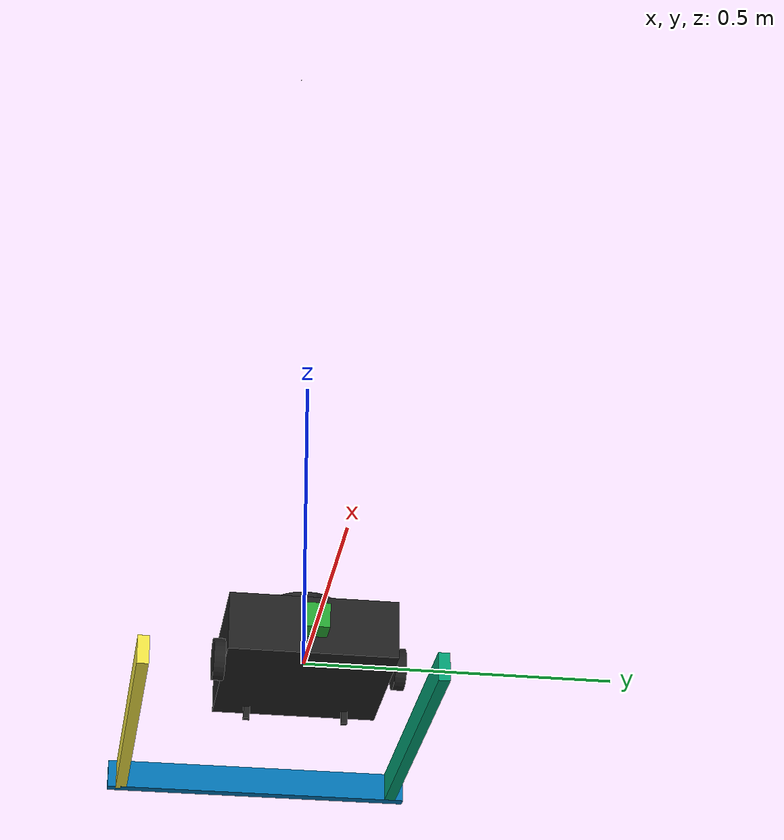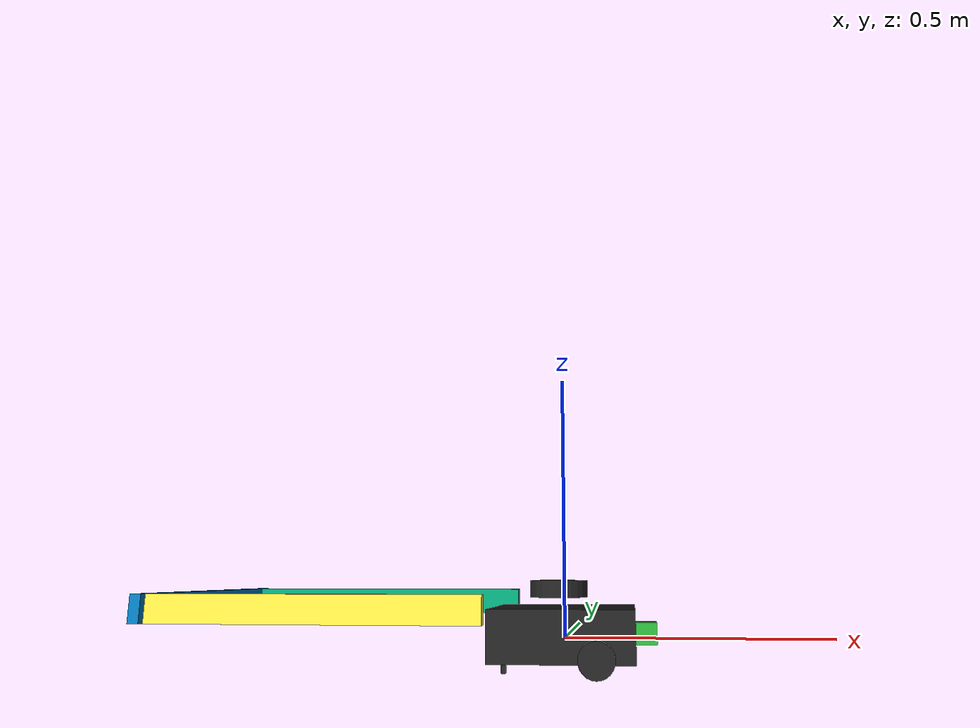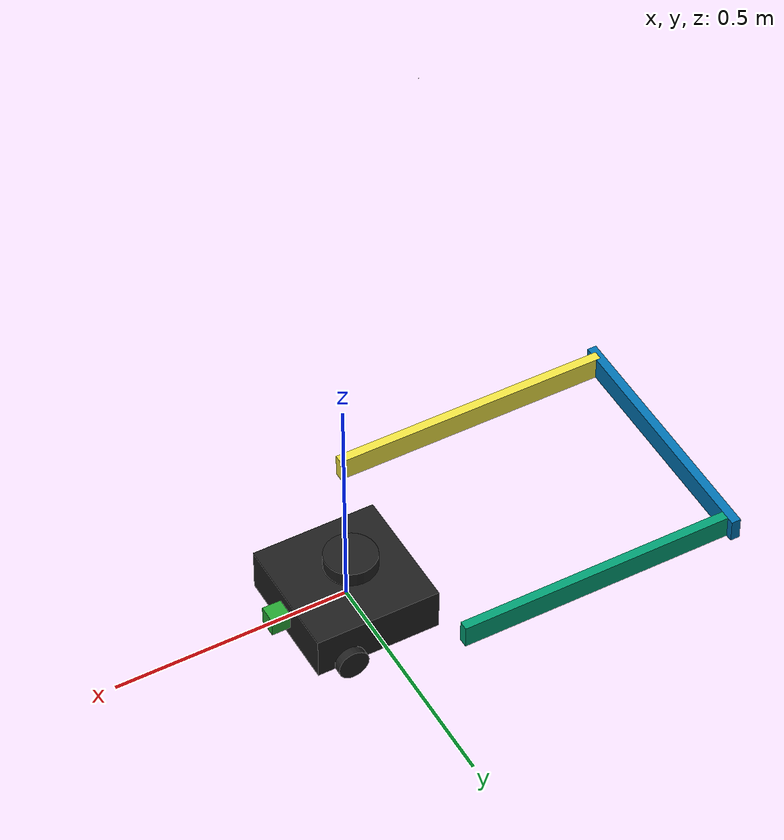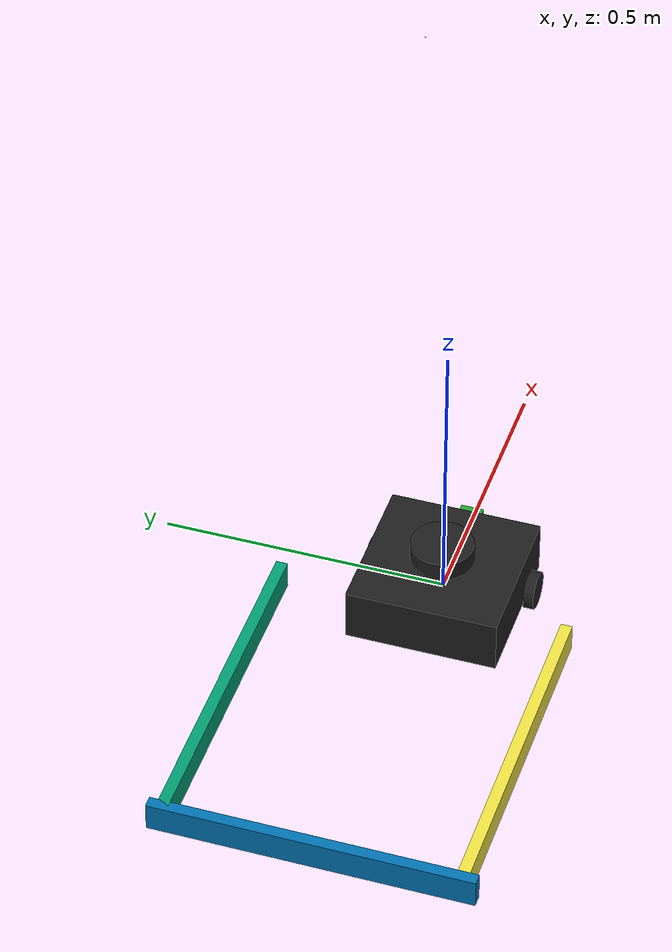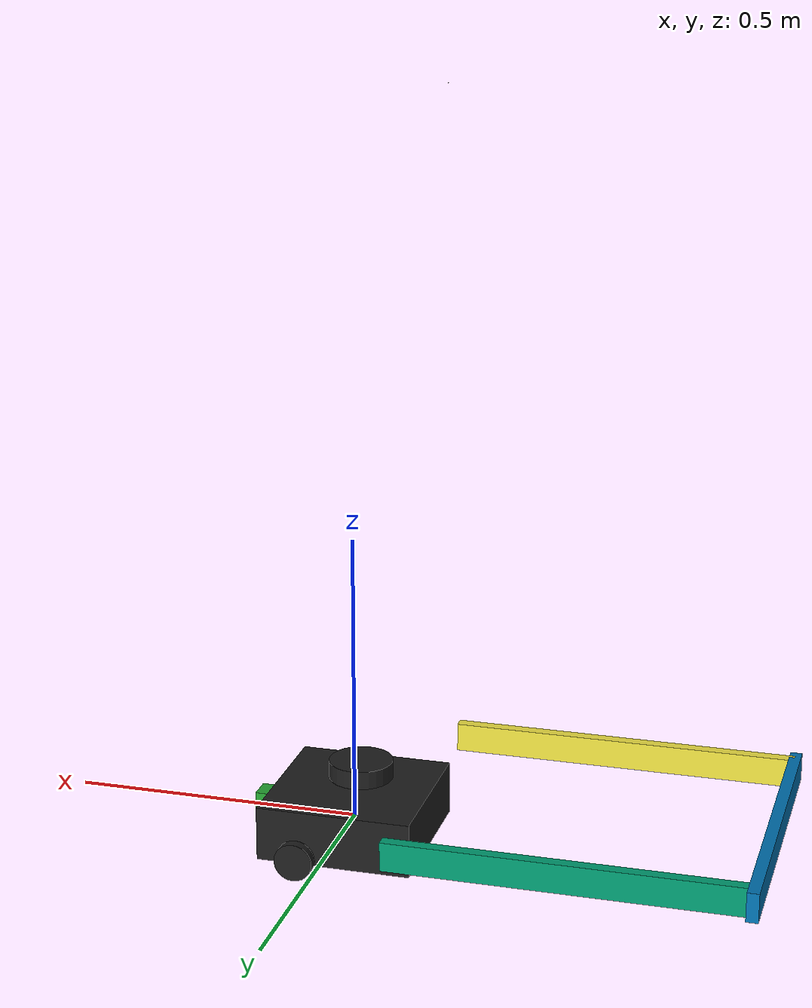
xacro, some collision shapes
<?xml version="1.0" ?>
<robot name="turtlebot3_waffle" xmlns:xacro="http://ros.org/wiki/xacro">
  <xacro:include filename="$(find mybot_description)/urdf/turtlebot/common_properties.xacro"/>
  <xacro:include filename="$(find mybot_description)/urdf/turtlebot/turtlebot3_waffle.gazebo.xacro"/>

  <xacro:property name="r200_cam_rgb_px" value="0.005"/>
  <xacro:property name="r200_cam_rgb_py" value="0.018"/>
  <xacro:property name="r200_cam_rgb_pz" value="0.013"/>
  <xacro:property name="r200_cam_depth_offset" value="0.01"/>

   <xacro:property name="base_x" value= "0.266" />
   <xacro:property name="base_y" value="0.266" />
   <xacro:property name="base_z" value="0.094" />
   <xacro:property name="wheel_from_base" value="0.064" />
   <xacro:property name="wheel_rad" value="0.033" />
   <xacro:property name="wheel_len" value="0.018" />
   <xacro:property name="castor_height" value="0.01" />

   <xacro:property name="arm_mount_height" value="0.05" />
   <xacro:property name="arm_len" value="0.6" />
   <xacro:property name="arm_width" value="0.05" />
   <xacro:property name="arm_thick" value="0.02" />
   <xacro:property name="arm_dist" value="0.5" />
   <xacro:property name="camera_size" value="${arm_width*0.8}"/>

   <xacro:property name="default_mas" value="0.005" />

  <link name="base_footprint"/>

  <joint name="base_joint" type="fixed">
    <parent link="base_footprint"/>
    <child link="base_link" />
    <origin xyz="0 0 0.010" rpy="0 0 0"/>
  </joint>

  <link name="base_link">
    <visual>
      <origin xyz="0.0 0 0.0" rpy="0 0 0"/>
      <geometry>
             <box size="${base_x} ${base_y} ${base_z}"/>
      </geometry>
      <material name="light_black"/>
    </visual>

    <collision>
      <origin xyz="0.0 0 0" rpy="0 0 0"/>
      <geometry>
        <box size="${base_x} ${base_y} ${base_z}"/>
      </geometry>
    </collision>

    <inertial>
      <origin xyz="0 0 0" rpy="0 0 0"/>
      <mass value="6.0"/>
      <inertia ixx="8.7002718e-03" ixy="-4.7576583e-05" ixz="1.1160499e-04"
               iyy="8.6195418e-01" iyz="-3.5422299e-06"
               izz="6.4612727e-01" />
    </inertial>
  </link>

<!-- ********right arm***********-->
<joint name="base_to_right_arm" type="fixed">
    <parent link="base_link"/>
    <child link="right_arm"/>
    <origin xyz="${-base_x*0.45} ${arm_dist*0.5} ${arm_mount_height}" rpy="0 0 0"/>
    <axis xyz="0 0 1"/>
  </joint>

  <link name="right_arm">
    <visual>
      <origin xyz="${-arm_len*0.5} 0 0" rpy="0 0 0"/>
      <geometry>
	<box size="${arm_len} ${arm_thick} ${arm_width}"/>
      </geometry>
      <material name="dark"/>
    </visual>

     <collision>
      <origin xyz="${-arm_len*0.5} 0 0" rpy="0 0 0"/>
      <geometry>
	<box size="${arm_len} ${arm_thick} ${arm_width}"/>
      </geometry>
    </collision>

    <inertial>
      <mass value="${default_mas}" />
      <inertia ixx="1.1175580e-05" ixy="-4.2369783e-11" ixz="-5.9381719e-09"
               iyy="1.1192413e-05" iyz="-1.4400107e-11"
               izz="2.0712558e-05" />
      </inertial>
  </link>

<!--********left arm*******-->
<joint name="base_to_left_arm" type="fixed">
    <parent link="base_link"/>
    <child link="left_arm"/>
    <origin xyz="${-base_x*0.45} ${-arm_dist*0.5} ${arm_mount_height}" rpy="0 0 0"/>
    <axis xyz="0 0 1"/>
  </joint>

  <link name="left_arm">
    <visual>
      <origin xyz="${-arm_len*0.5} 0 0" rpy="0 0 0"/>
      <geometry>
	<box size="${arm_len} ${arm_thick} ${arm_width}"/>
      </geometry>
      <material name="dark"/>
    </visual>

    <inertial>
      <mass value="${default_mas}" />
      <inertia ixx="1.1175580e-05" ixy="-4.2369783e-11" ixz="-5.9381719e-09"
               iyy="1.1192413e-05" iyz="-1.4400107e-11"
               izz="2.0712558e-05" />
      </inertial>
  </link>

<!--*********cross bar********-->
<joint name="right_arm_to_crossbar" type="revolute">
    <parent link="right_arm"/>
    <child link="crossbar"/>
    <axis xyz="-1 0 0"/>
    <limit effort="100.0" lower="0.0" upper="3.14" velocity="0.1"/>
    <origin xyz="${-arm_len} 0 0" rpy="0 0 0"/>
  </joint>

  <link name="crossbar">
    <visual>
      <origin xyz="0 ${-arm_dist*0.5} 0" rpy="0 0 0"/>
      <geometry>
	<box size="${arm_thick} ${arm_dist + arm_width} ${arm_width}"/>
      </geometry>
      <material name="dark"/>
    </visual>

    <inertial>
      <mass value="${default_mas}" />
      <inertia ixx="1.1175580e-05" ixy="-4.2369783e-11" ixz="-5.9381719e-09"
               iyy="1.1192413e-05" iyz="-1.4400107e-11"
               izz="2.0712558e-05" />
      </inertial>
  </link>

  <!-- ******** Hokuyo Laser on base******* -->
<joint name="hokuyo_joint_base" type="fixed">
    <axis xyz="0 1 0" />
    <origin xyz="${-base_x*0.1} 0.0 ${base_z*0.5 + 0.04}" rpy="0 0 0"/>
    <parent link="base_link"/>
    <child link="base_scan"/>
  </joint>

   <link name="base_scan">
    <visual>
      <origin xyz="0 0 0" rpy="0 0 0"/>
      <geometry>
        <mesh filename="package://mybot_description/meshes/sensors/lds.stl" scale="0.001 0.001 0.001"/>
      </geometry>
      <material name="dark"/>
    </visual>

    <collision>
      <origin xyz="0.015 0 -0.0065" rpy="0 0 0"/>
      <geometry>
        <cylinder length="0.0315" radius="0.055"/>
      </geometry>
    </collision>

    <inertial>
      <mass value="0.114" />
      <origin xyz="0 0 0" />
      <inertia ixx="0.001" ixy="0.0" ixz="0.0"
               iyy="0.001" iyz="0.0"
               izz="0.001" />
    </inertial>
  </link>

 <!-- **********************camera *************** -->

 <joint name="camera_joint" type="fixed">
    <axis xyz="0 1 0" />
    <origin xyz="${base_x*0.5 + camera_size*0.5} 0 0" rpy="0 0 0"/>
    <parent link="base_link"/>
    <child link="camera"/>
  </joint>

 <link name="camera">
    <collision>
      <origin xyz="0 0 0" rpy="0 0 0"/>
      <geometry>
        <box size="${camera_size} ${camera_size} ${camera_size}"/>
      </geometry>
    </collision>

    <visual>
      <origin xyz="0 0 0" rpy="0 0 0"/>
      <geometry>
        <box size="${camera_size} ${camera_size} ${camera_size}"/>
      </geometry>
      <material name="green"/>
    </visual>

    <inertial>
      <origin xyz="0 0 0" />
      <mass value="${default_mas}" />
      <inertia ixx="1.1175580e-05" ixy="-4.2369783e-11" ixz="-5.9381719e-09"
               iyy="1.1192413e-05" iyz="-1.4400107e-11"
               izz="2.0712558e-05" />
      </inertial>
  </link>

  <!-- ******** Hokuyo Laser for back******* -->
<joint name="hokuyo_joint_back" type="fixed">
    <axis xyz="0 1 0" />
    <origin xyz="${-base_x*0.6} 0.0 ${base_z*0.5 + 1.2}" rpy="0 0 3.14"/>
    <parent link="base_link"/>
    <child link="hokuyo_back"/>
  </joint>

  <link name="hokuyo_back">
    <collision>
      <origin xyz="0 0 0" rpy="0 0 0"/>
      <geometry>
    <box size="0.001 0.001 0.001"/>
      </geometry>
    </collision>

    <visual>
      <origin xyz="0 0 0" rpy="0 0 0"/>
      <geometry>
        <mesh filename="package://mybot_description/meshes/hokuyo.dae"/>
      </geometry>
    </visual>

    <inertial>
      <mass value="1e-5" />
      <origin xyz="0 0 0" rpy="0 0 0"/>
      <inertia ixx="1e-6" ixy="0" ixz="0" iyy="1e-6" iyz="0" izz="1e-6" />
    </inertial>
  </link>

<!--********left wheel*******-->
  <joint name="wheel_left_joint" type="continuous">
    <parent link="base_link"/>
    <child link="wheel_left_link"/>
    <origin xyz="${wheel_from_base} ${base_y*0.5 + wheel_len*0.5} ${-base_z*0.4}" rpy="-1.57 0 0"/>
    <axis xyz="0 0 1"/>
  </joint>

  <link name="wheel_left_link">
    <visual>
      <origin xyz="0 0 0" rpy="0 0 0"/>
      <geometry>
        <cylinder length="${wheel_len}" radius="${wheel_rad}"/>
      </geometry>
      <material name="dark"/>
    </visual>

    <collision>
      <origin xyz="0 0 0" rpy="0 0 0"/>
      <geometry>
        <cylinder length="${wheel_len}" radius="${wheel_rad}"/>
      </geometry>
    </collision>

    <inertial>
      <origin xyz="0 0 0" />
      <mass value="2.8498940e-02" />
      <inertia ixx="1.1175580e-05" ixy="-4.2369783e-11" ixz="-5.9381719e-09"
               iyy="1.1192413e-05" iyz="-1.4400107e-11"
               izz="2.0712558e-05" />
      </inertial>
  </link>

<!--********right wheel*******-->
  <joint name="wheel_right_joint" type="continuous">
    <parent link="base_link"/>
    <child link="wheel_right_link"/>
    <origin xyz="${wheel_from_base} -${base_y*0.5 + wheel_len*0.5} ${-base_z*0.4}" rpy="-1.57 0 0"/>
    <axis xyz="0 0 1"/>
  </joint>

  <link name="wheel_right_link">
    <visual>
      <origin xyz="0 0 0" rpy="0 0 0"/>
      <geometry>
            <cylinder length="${wheel_len}" radius="${wheel_rad}"/>
      </geometry>
      <material name="dark"/>
    </visual>

    <collision>
      <origin xyz="0 0 0" rpy="0 0 0"/>
      <geometry>
        <cylinder length="${wheel_len}" radius="${wheel_rad}"/>
      </geometry>
    </collision>

    <inertial>
      <origin xyz="0 0 0" />
      <mass value="2.8498940e-02" />
      <inertia ixx="1.1175580e-05" ixy="-4.2369783e-11" ixz="-5.9381719e-09"
               iyy="1.1192413e-05" iyz="-1.4400107e-11"
               izz="2.0712558e-05" />
      </inertial>
  </link>

<!--********castors*******-->
<joint name="caster_back_right_joint" type="fixed">
    <parent link="base_link"/>
    <child link="caster_back_right_link"/>
    <origin xyz="${-base_x*0.4} ${-base_y*0.3} ${-base_z*0.5 - castor_height*0.5}" rpy="-1.57 1.57 0"/>
  </joint>

  <link name="caster_back_right_link">
 <visual>
      <origin xyz="0 0.001 0" rpy="0 0 0"/>
      <geometry>
	<box size="0.030 0.009 ${castor_height}"/>
      </geometry>
    </visual>
    <collision>
      <origin xyz="0 0.001 0" rpy="0 0 0"/>
      <geometry>
	<box size="0.030 0.009 ${castor_height}"/>
      </geometry>
    </collision>

    <inertial>
      <origin xyz="0 0 0" />
      <mass value="0.005" />
      <inertia ixx="0.001" ixy="0.0" ixz="0.0"
               iyy="0.001" iyz="0.0"
               izz="0.001" />
    </inertial>
  </link>

  <joint name="caster_back_left_joint" type="fixed">
    <parent link="base_link"/>
    <child link="caster_back_left_link"/>
    <origin xyz="${-base_x*0.4} ${base_y*0.3} ${-base_z*0.5 - castor_height*0.5} " rpy="-1.57 1.57 0"/>
  </joint>

  <link name="caster_back_left_link">
     <visual>
      <origin xyz="0 0.001 0" rpy="0 0 0"/>
      <geometry>
	<box size="0.030 0.009 ${castor_height}"/>
      </geometry>
    </visual>
    <collision>
      <origin xyz="0 0.001 0" rpy="0 0 0"/>
      <geometry>
	<box size="0.030 0.009 ${castor_height}"/>
      </geometry>
    </collision>

    <inertial>
      <origin xyz="0 0 0" />
      <mass value="0.005" />
      <inertia ixx="0.001" ixy="0.0" ixz="0.0"
               iyy="0.001" iyz="0.0"
               izz="0.001" />
    </inertial>
  </link>

 <joint name="imu_joint" type="fixed">
    <parent link="base_link"/>
    <child link="imu_link"/>
    <origin xyz="0.0 0 0.068" rpy="0 0 0"/>
  </joint>

  <link name="imu_link"/>

<gazebo>
    <plugin name="gazebo_ros_control" filename="libgazebo_ros_control.so">
      <robotNamespace>/mybot</robotNamespace>
 	<legacyModeNS>1</legacyModeNS>
    <robotSimType>gazebo_ros_control/DefaultRobotHWSim</robotSimType>
    </plugin>
  </gazebo>

</robot>
